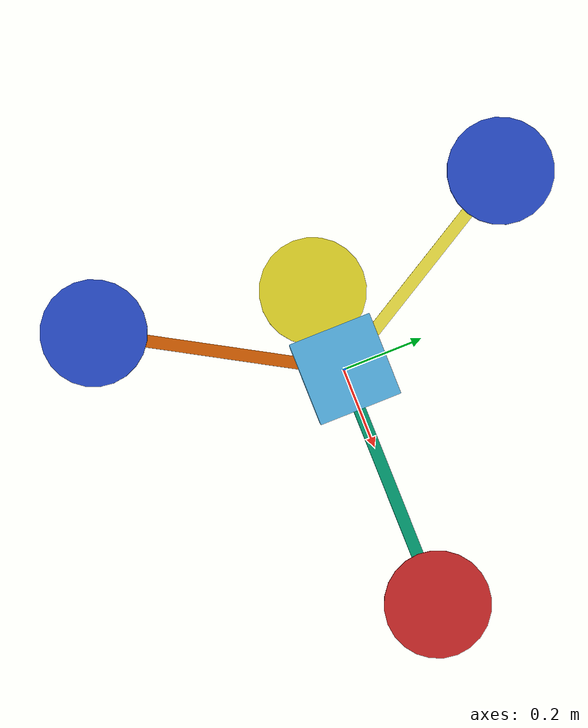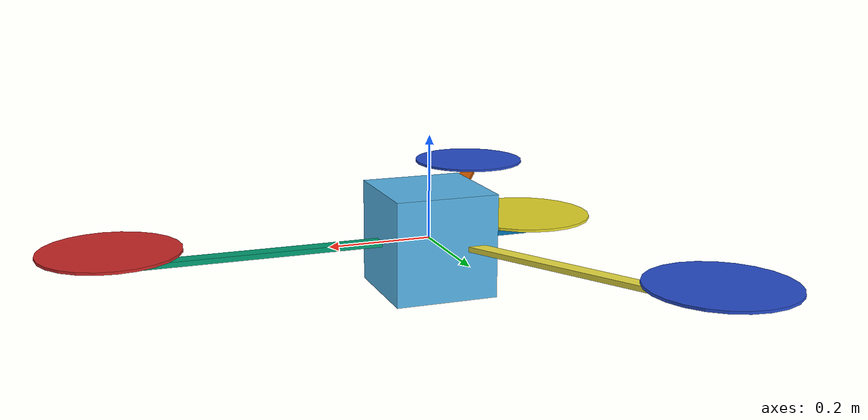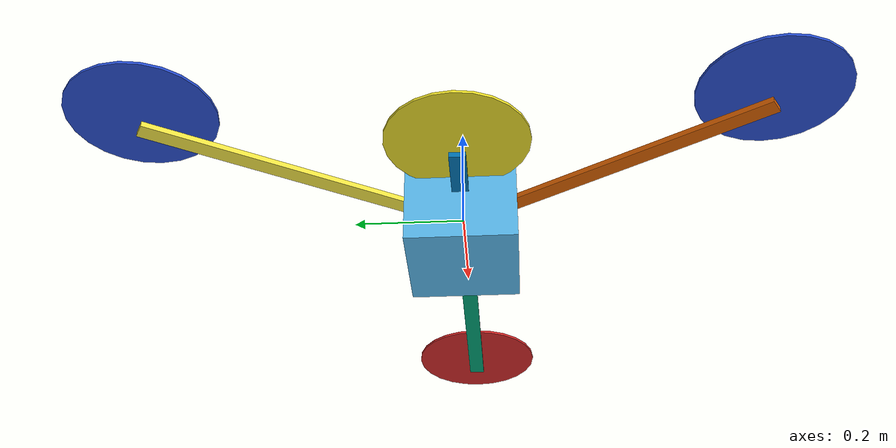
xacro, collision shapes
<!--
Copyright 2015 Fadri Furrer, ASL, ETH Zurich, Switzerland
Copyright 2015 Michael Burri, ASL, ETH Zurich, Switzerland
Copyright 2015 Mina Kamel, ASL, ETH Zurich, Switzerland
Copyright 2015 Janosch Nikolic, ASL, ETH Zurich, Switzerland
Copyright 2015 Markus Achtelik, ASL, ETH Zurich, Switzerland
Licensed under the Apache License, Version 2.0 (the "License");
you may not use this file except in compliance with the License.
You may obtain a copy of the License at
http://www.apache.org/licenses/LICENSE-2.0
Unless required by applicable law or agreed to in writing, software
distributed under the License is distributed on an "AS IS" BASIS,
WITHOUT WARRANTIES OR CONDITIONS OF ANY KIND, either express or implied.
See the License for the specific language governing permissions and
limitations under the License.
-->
<?xml version="1.0"?>

<robot name="asymmetric_quadrotor" xmlns:xacro="http://ros.org/wiki/xacro">
  <!-- Included URDF Files -->
  <xacro:include filename="$(find movedrone_setup_assistant)/urdf/multirotor_base.xacro" />
  <!-- Properties  -->
  <xacro:property name="namespace" value="asymmetric_quadrotor" />
  <xacro:property name="use_mesh_file" value="false" />
  <xacro:property name="rotor_velocity_slowdown_sim" value="10" />
  <xacro:property name="mass_arm" value="0.01" /> <!-- [kg] -->
  <xacro:property name="mass" value="1.0" /> <!-- [kg] -->
  <xacro:property name="body_width" value="0.2" />
  <xacro:property name="body_height" value="0.2" />
  <xacro:property name="mass_rotor" value="0.01" /> <!-- [kg] -->
  <xacro:property name="arm_length" value="0.6" />
  <xacro:property name="rotor_offset_top" value="0.03" />
  <xacro:property name="radius_rotor" value="0.128" />
  <xacro:property name="motor_constant" value="9.9865e-06" /> <!-- [kg m/s^2] -->
  <xacro:property name="moment_constant" value="0.016" />
  <xacro:property name="time_constant_up" value="0.0125" />
  <xacro:property name="time_constant_down" value="0.025" />
  <xacro:property name="max_rot_velocity" value="1000" /> <!-- [rad/s] -->
  <xacro:property name="rotor_drag_coefficient" value="8.06428e-05" />
  <xacro:property name="rolling_moment_coefficient" value="0.000001" />

  <!-- Property Blocks -->
  <xacro:property name="body_inertia">
    <inertia ixx="0.01" ixy="0.0" ixz="0.0" iyy="0.01" iyz="0.0" izz="0.02" /> <!-- [kg m^2] [kg m^2] [kg m^2] [kg m^2] [kg m^2] [kg m^2] -->
  </xacro:property>

  <!-- inertia of a single rotor, assuming it is a cuboid. Height=3mm, width=15mm -->
  <xacro:property name="rotor_inertia">
    <xacro:box_inertia x="${radius_rotor}" y="0.015" z="0.003" mass="${mass_rotor*rotor_velocity_slowdown_sim}" />
  </xacro:property>

  <!-- Instantiate multirotor_base_macro once -->
  <xacro:multirotor_base_macro
    robot_namespace="${namespace}"
    mass="${mass}"
    body_width="${body_width}"
    body_height="${body_height}"
    use_mesh_file="${use_mesh_file}"
    mesh_file=""
    >
    <xacro:insert_block name="body_inertia" />
  </xacro:multirotor_base_macro>

  <joint name="${namespace}/arm0_joint" type="fixed">
    <origin xyz="0 0 0" rpy="0 0 0" />
    <parent link="${namespace}/base_link" />
    <child link="${namespace}/arm0_link" />
  </joint>

  <link name="${namespace}/arm0_link">
    <xacro:box_inertial x="${arm_length}" y="0.03" z="0.01" mass="${(mass_rotor/3+mass_arm*5/9)*2}">
      <origin xyz="${arm_length/2} 0 0" />
    </xacro:box_inertial>
    <visual>
      <origin xyz="${arm_length/2} 0 0" rpy="0 0 0" />
      <geometry>
        <box size="${arm_length} 0.03 0.01"/>
      </geometry>
    </visual>
    <collision>
      <origin xyz="${arm_length/2} 0 0" rpy="0 0 0" />
      <geometry>
        <box size="${arm_length} 0.03 0.01"/>
      </geometry>
    </collision>
  </link>

  <joint name="${namespace}/arm1_joint" type="fixed">
    <origin xyz="0 0 0" rpy="0 0 ${2*pi/3}" />
    <parent link="${namespace}/base_link" />
    <child link="${namespace}/arm1_link" />
  </joint>

  <link name="${namespace}/arm1_link">
    <xacro:box_inertial x="${arm_length}" y="0.03" z="0.01" mass="${mass_arm}">
      <origin xyz="${arm_length/2} 0 0" />
    </xacro:box_inertial>
    <visual>
      <origin xyz="${arm_length/2} 0 0" rpy="0 0 0" />
      <geometry>
        <box size="${arm_length} 0.03 0.01"/>
      </geometry>
    </visual>
    <collision>
      <origin xyz="${arm_length/2} 0 0" rpy="0 0 0" />
      <geometry>
        <box size="${arm_length} 0.03 0.01"/>
      </geometry>
    </collision>
  </link>

  <joint name="${namespace}/arm2_joint" type="fixed">
    <origin xyz="0 0 0" rpy="0 0 ${pi}" />
    <parent link="${namespace}/base_link" />
    <child link="${namespace}/arm2_link" />
  </joint>

  <link name="${namespace}/arm2_link">
    <xacro:box_inertial x="${arm_length/3}" y="0.03" z="0.01" mass="${mass_arm/3}">
      <origin xyz="${arm_length/6} 0 0" />
    </xacro:box_inertial>
    <visual>
      <origin xyz="${arm_length/6} 0 0" rpy="0 0 0" />
      <geometry>
        <box size="${arm_length/3} 0.03 0.01"/>
      </geometry>
    </visual>
    <collision>
      <origin xyz="${arm_length/6} 0 0" rpy="0 0 0" />
      <geometry>
        <box size="${arm_length/3} 0.03 0.01"/>
      </geometry>
    </collision>
  </link>

  <joint name="${namespace}/arm3_joint" type="fixed">
    <origin xyz="0 0 0" rpy="0 0 -${2*pi/3}" />
    <parent link="${namespace}/base_link" />
    <child link="${namespace}/arm3_link" />
  </joint>

  <link name="${namespace}/arm3_link">
    <xacro:box_inertial x="${arm_length}" y="0.03" z="0.01" mass="${mass_arm}">
      <origin xyz="${arm_length/2} 0 0" />
    </xacro:box_inertial>
    <visual>
      <origin xyz="${arm_length/2} 0 0" rpy="0 0 0" />
      <geometry>
        <box size="${arm_length} 0.03 0.01"/>
      </geometry>
    </visual>
    <collision>
      <origin xyz="${arm_length/2} 0 0" rpy="0 0 0" />
      <geometry>
        <box size="${arm_length} 0.03 0.01"/>
      </geometry>
    </collision>
  </link>

  <!-- Instantiate rotors -->
  <xacro:vertical_rotor
    robot_namespace="${namespace}"
    suffix="0"
    direction="ccw"
    motor_constant="${motor_constant}"
    moment_constant="${moment_constant}"
    parent="${namespace}/arm0_link"
    mass_rotor="${mass_rotor}"
    radius_rotor="${radius_rotor}"
    time_constant_up="${time_constant_up}"
    time_constant_down="${time_constant_down}"
    max_rot_velocity="${max_rot_velocity}"
    motor_number="0"
    rotor_drag_coefficient="${rotor_drag_coefficient}"
    rolling_moment_coefficient="${rolling_moment_coefficient}"
    color="Red"
    use_own_mesh="false"
    mesh="">
    <origin xyz="${arm_length} 0 ${rotor_offset_top}" rpy="0 0 0" />
    <xacro:insert_block name="rotor_inertia" />
  </xacro:vertical_rotor>

  <xacro:vertical_rotor
    robot_namespace="${namespace}"
    suffix="1"
    direction="cw"
    motor_constant="${motor_constant}"
    moment_constant="${moment_constant}"
    parent="${namespace}/arm1_link"
    mass_rotor="${mass_rotor}"
    radius_rotor="${radius_rotor}"
    time_constant_up="${time_constant_up}"
    time_constant_down="${time_constant_down}"
    max_rot_velocity="${max_rot_velocity}"
    motor_number="1"
    rotor_drag_coefficient="${rotor_drag_coefficient}"
    rolling_moment_coefficient="${rolling_moment_coefficient}"
    color="Blue"
    use_own_mesh="false"
    mesh="">
    <origin xyz="${arm_length} 0 ${rotor_offset_top}" rpy="0 0 0" />
    <xacro:insert_block name="rotor_inertia" />
  </xacro:vertical_rotor>

  <xacro:vertical_rotor
    robot_namespace="${namespace}"
    suffix="2"
    direction="ccw"
    motor_constant="${motor_constant}"
    moment_constant="${moment_constant}"
    parent="${namespace}/arm2_link"
    mass_rotor="${mass_rotor}"
    radius_rotor="${radius_rotor}"
    time_constant_up="${time_constant_up}"
    time_constant_down="${time_constant_down}"
    max_rot_velocity="${max_rot_velocity}"
    motor_number="2"
    rotor_drag_coefficient="${rotor_drag_coefficient}"
    rolling_moment_coefficient="${rolling_moment_coefficient}"
    color="Yellow"
    use_own_mesh="false"
    mesh="">
    <origin xyz="${arm_length/3} 0 ${rotor_offset_top}" rpy="0 0 0" />
    <xacro:insert_block name="rotor_inertia" />
  </xacro:vertical_rotor>

  <xacro:vertical_rotor
    robot_namespace="${namespace}"
    suffix="3"
    direction="cw"
    motor_constant="${motor_constant}"
    moment_constant="${moment_constant}"
    parent="${namespace}/arm3_link"
    mass_rotor="${mass_rotor}"
    radius_rotor="${radius_rotor}"
    time_constant_up="${time_constant_up}"
    time_constant_down="${time_constant_down}"
    max_rot_velocity="${max_rot_velocity}"
    motor_number="3"
    rotor_drag_coefficient="${rotor_drag_coefficient}"
    rolling_moment_coefficient="${rolling_moment_coefficient}"
    color="Blue"
    use_own_mesh="false"
    mesh="">
    <origin xyz="${arm_length} 0 ${rotor_offset_top}" rpy="0 0 0" />
    <xacro:insert_block name="rotor_inertia" />
  </xacro:vertical_rotor>

</robot>

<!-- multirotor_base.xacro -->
<robot xmlns:xacro="http://ros.org/wiki/xacro">

  <!-- Macro for the inertia of a box -->
  <xacro:macro name="box_inertia" params="x y z mass">
    <inertia ixx="${0.0833333 * mass * (y*y + z*z)}" ixy="0.0" ixz="0.0" iyy="${0.0833333 * mass * (x*x + z*z)}" iyz="0.0" izz="${0.0833333 * mass * (x*x + y*y)}" />
  </xacro:macro>

  <!-- Macro for the inertial properties of a box -->
  <xacro:macro name="box_inertial" params="x y z mass *origin">
    <inertial>
      <mass value="${mass}" />
      <xacro:insert_block name="origin" />
      <xacro:box_inertia x="${x}" y="${y}" z="${z}" mass="${mass}" />
    </inertial>
  </xacro:macro>

  <!-- Main multirotor link -->
  <xacro:macro name="multirotor_base_macro" params="robot_namespace mass body_width body_height use_mesh_file mesh_file *inertia">
    <link name="${robot_namespace}/base_link"></link>

    <joint name="${robot_namespace}/base_joint" type="fixed">
      <origin xyz="0 0 0" rpy="0 0 0" />
      <parent link="${robot_namespace}/base_link" />
      <child link="${robot_namespace}/base_link_inertia" />
    </joint>

    <link name="${robot_namespace}/base_link_inertia">
      <inertial>
        <mass value="${mass}" />
        <origin xyz="0 0 0" />
        <xacro:insert_block name="inertia" />
      </inertial>

      <visual>
        <origin xyz="0 0 0" rpy="0 0 0" />
        <geometry>
          <xacro:if value="${use_mesh_file}">
            <mesh filename="${mesh_file}" scale="1 1 1" />
          </xacro:if>
          <xacro:unless value="${use_mesh_file}">
            <box size="${body_width} ${body_width} ${body_height}"/>
          </xacro:unless>
        </geometry>
      </visual>

      <collision>
        <origin xyz="0 0 0" rpy="0 0 0" />
        <geometry>
          <box size="${body_width} ${body_width} ${body_height}" />
        </geometry>
      </collision>
    </link>
  </xacro:macro>

  <!-- Rotor joint and link -->
  <xacro:macro name="vertical_rotor" params="robot_namespace direction parent mass_rotor radius_rotor motor_number color use_own_mesh mesh *origin *inertia">
    <joint name="${robot_namespace}/rotor_${motor_number}_joint" type="continuous">
      <xacro:insert_block name="origin" />
      <axis xyz="0 0 1" />
      <parent link="${parent}" />
      <child link="${robot_namespace}/rotor_${motor_number}" />
    </joint>
    <link name="${robot_namespace}/rotor_${motor_number}">
      <inertial>
        <mass value="${mass_rotor}" />
        <xacro:insert_block name="inertia" />
      </inertial>
      <visual>
        <geometry>
          <xacro:if value="${use_own_mesh}">
            <mesh filename="${mesh}" scale="1 1 1" />
          </xacro:if>
          <xacro:unless value="${use_own_mesh}">
            <mesh filename="package://tobas_description/meshes/propeller_${direction}.dae" scale="${radius_rotor} ${radius_rotor} ${radius_rotor}" />
          </xacro:unless>
        </geometry>
      </visual>
      <collision>
        <geometry>
          <cylinder length="0.005" radius="${radius_rotor}" />
        </geometry>
      </collision>
    </link>
    <gazebo reference="${robot_namespace}/rotor_${motor_number}">
      <material>Gazebo/${color}</material>
    </gazebo>
  </xacro:macro>

  <!-- Virtual frame for visualization -->
  <xacro:macro name="virtual_frame" params="parent name *origin">
    <joint name="${name}_joint" type="fixed">
      <xacro:insert_block name="origin"/>
      <parent link="${parent}"/>
      <child link="${name}_link"/>
    </joint>

    <link name="${name}_link">
      <inertial>
        <mass value="1e-9"/>
        <inertia ixx="1e-9" ixy="0" ixz="0" iyy="1e-9" iyz="0" izz="1e-9"/>
      </inertial>
      <visual>
        <geometry>
          <box size="1e-3 1e-3 1e-3"/>
        </geometry>
        <material name="Red">
          <color rgba="1.0 0.0 0.0 1.0"/>
        </material>
      </visual>
      <collision>
        <geometry>
          <box size="1e-3 1e-3 1e-3"/>
        </geometry>
      </collision>
    </link>
  </xacro:macro>

</robot>
